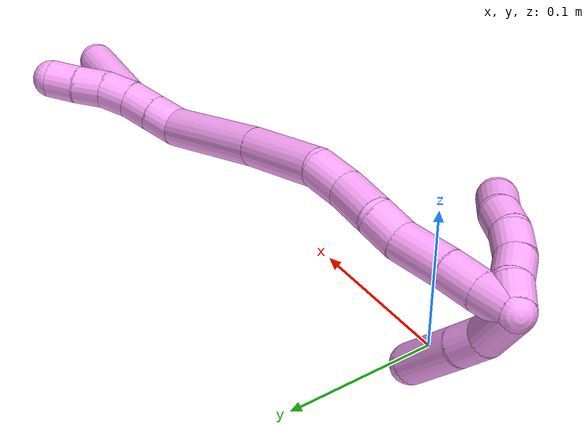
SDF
<sdf version="1.7">
 <world name="default">
  <model name="4">
   <static>0</static>
   <link name="4">
    <collision name="collision-cylinder-e_1_2_8">
     <pose>0.014622 0.004383 -0.038795 -3.02908 0.358356 -2.53871</pose>
     <geometry><cylinder><radius>0.0125</radius><length>0.083381</length></cylinder></geometry>
     <surface>
      <friction><ode><mu>1.16</mu><mu2>1.16</mu2><slip1>0</slip1><slip2>0</slip2></ode></friction>
      <contact><ode><kp>1e+06</kp><kd>1</kd><max_vel>0</max_vel><min_depth>0.001</min_depth></ode></contact>
     </surface>
    </collision>
    <visual name="visual-cylinder-e_1_2_8">
     <pose>0.014622 0.004383 -0.038795 -3.02908 0.358356 -2.53871</pose>
     <geometry><cylinder><radius>0.0125</radius><length>0.083381</length></cylinder></geometry>
     <material><ambient>1 0.65098 0.996078 1</ambient></material>
    </visual>
    <collision name="collision-cylinder-e_2_8_6">
     <pose>0.04405 0.007662 -0.107409 3.10458 0.460576 2.98402</pose>
     <geometry><cylinder><radius>0.0125</radius><length>0.066619</length></cylinder></geometry>
     <surface>
      <friction><ode><mu>1.16</mu><mu2>1.16</mu2><slip1>0</slip1><slip2>0</slip2></ode></friction>
      <contact><ode><kp>1e+06</kp><kd>1</kd><max_vel>0</max_vel><min_depth>0.001</min_depth></ode></contact>
     </surface>
    </collision>
    <visual name="visual-cylinder-e_2_8_6">
     <pose>0.04405 0.007662 -0.107409 3.10458 0.460576 2.98402</pose>
     <geometry><cylinder><radius>0.0125</radius><length>0.066619</length></cylinder></geometry>
     <material><ambient>1 0.65098 0.996078 1</ambient></material>
    </visual>
    <collision name="collision-cylinder-e_1_2_9">
     <pose>0.008101 0.001811 -0.005576 -2.82759 0.944368 -2.54045</pose>
     <geometry><cylinder><radius>0.0125</radius><length>0.02</length></cylinder></geometry>
     <surface>
      <friction><ode><mu>1.16</mu><mu2>1.16</mu2><slip1>0</slip1><slip2>0</slip2></ode></friction>
      <contact><ode><kp>1e+06</kp><kd>1</kd><max_vel>0</max_vel><min_depth>0.001</min_depth></ode></contact>
     </surface>
    </collision>
    <visual name="visual-cylinder-e_1_2_9">
     <pose>0.008101 0.001811 -0.005576 -2.82759 0.944368 -2.54045</pose>
     <geometry><cylinder><radius>0.0125</radius><length>0.02</length></cylinder></geometry>
     <material><ambient>1 0.65098 0.996078 1</ambient></material>
    </visual>
    <collision name="collision-cylinder-e_2_9_10">
     <pose>0.024255 0.005345 -0.016825 -2.84666 0.936143 -2.57002</pose>
     <geometry><cylinder><radius>0.0125</radius><length>0.02</length></cylinder></geometry>
     <surface>
      <friction><ode><mu>1.16</mu><mu2>1.16</mu2><slip1>0</slip1><slip2>0</slip2></ode></friction>
      <contact><ode><kp>1e+06</kp><kd>1</kd><max_vel>0</max_vel><min_depth>0.001</min_depth></ode></contact>
     </surface>
    </collision>
    <visual name="visual-cylinder-e_2_9_10">
     <pose>0.024255 0.005345 -0.016825 -2.84666 0.936143 -2.57002</pose>
     <geometry><cylinder><radius>0.0125</radius><length>0.02</length></cylinder></geometry>
     <material><ambient>1 0.65098 0.996078 1</ambient></material>
    </visual>
    <collision name="collision-cylinder-e_3_10_11">
     <pose>0.040498 0.010361 -0.027197 -2.53045 0.959634 -2.05167</pose>
     <geometry><cylinder><radius>0.0125</radius><length>0.02</length></cylinder></geometry>
     <surface>
      <friction><ode><mu>1.16</mu><mu2>1.16</mu2><slip1>0</slip1><slip2>0</slip2></ode></friction>
      <contact><ode><kp>1e+06</kp><kd>1</kd><max_vel>0</max_vel><min_depth>0.001</min_depth></ode></contact>
     </surface>
    </collision>
    <visual name="visual-cylinder-e_3_10_11">
     <pose>0.040498 0.010361 -0.027197 -2.53045 0.959634 -2.05167</pose>
     <geometry><cylinder><radius>0.0125</radius><length>0.02</length></cylinder></geometry>
     <material><ambient>1 0.65098 0.996078 1</ambient></material>
    </visual>
    <collision name="collision-cylinder-e_4_11_12">
     <pose>0.056357 0.018704 -0.035856 -2.23564 0.874108 -1.52983</pose>
     <geometry><cylinder><radius>0.0125</radius><length>0.02</length></cylinder></geometry>
     <surface>
      <friction><ode><mu>1.16</mu><mu2>1.16</mu2><slip1>0</slip1><slip2>0</slip2></ode></friction>
      <contact><ode><kp>1e+06</kp><kd>1</kd><max_vel>0</max_vel><min_depth>0.001</min_depth></ode></contact>
     </surface>
    </collision>
    <visual name="visual-cylinder-e_4_11_12">
     <pose>0.056357 0.018704 -0.035856 -2.23564 0.874108 -1.52983</pose>
     <geometry><cylinder><radius>0.0125</radius><length>0.02</length></cylinder></geometry>
     <material><ambient>1 0.65098 0.996078 1</ambient></material>
    </visual>
    <collision name="collision-cylinder-e_5_12_5">
     <pose>0.071717 0.028301 -0.044308 -2.35017 0.877196 -1.68641</pose>
     <geometry><cylinder><radius>0.0125</radius><length>0.02</length></cylinder></geometry>
     <surface>
      <friction><ode><mu>1.16</mu><mu2>1.16</mu2><slip1>0</slip1><slip2>0</slip2></ode></friction>
      <contact><ode><kp>1e+06</kp><kd>1</kd><max_vel>0</max_vel><min_depth>0.001</min_depth></ode></contact>
     </surface>
    </collision>
    <visual name="visual-cylinder-e_5_12_5">
     <pose>0.071717 0.028301 -0.044308 -2.35017 0.877196 -1.68641</pose>
     <geometry><cylinder><radius>0.0125</radius><length>0.02</length></cylinder></geometry>
     <material><ambient>1 0.65098 0.996078 1</ambient></material>
    </visual>
    <collision name="collision-cylinder-e_1_2_13">
     <pose>-0.018046 -0.012302 0.033091 0.355926 -0.472528 -0.086555</pose>
     <geometry><cylinder><radius>0.0125</radius><length>0.079297</length></cylinder></geometry>
     <surface>
      <friction><ode><mu>1.16</mu><mu2>1.16</mu2><slip1>0</slip1><slip2>0</slip2></ode></friction>
      <contact><ode><kp>1e+06</kp><kd>1</kd><max_vel>0</max_vel><min_depth>0.001</min_depth></ode></contact>
     </surface>
    </collision>
    <visual name="visual-cylinder-e_1_2_13">
     <pose>-0.018046 -0.012302 0.033091 0.355926 -0.472528 -0.086555</pose>
     <geometry><cylinder><radius>0.0125</radius><length>0.079297</length></cylinder></geometry>
     <material><ambient>1 0.65098 0.996078 1</ambient></material>
    </visual>
    <collision name="collision-cylinder-e_2_13_14">
     <pose>-0.049722 -0.032294 0.090897 0.301671 -0.484738 -0.075117</pose>
     <geometry><cylinder><radius>0.0125</radius><length>0.058507</length></cylinder></geometry>
     <surface>
      <friction><ode><mu>1.16</mu><mu2>1.16</mu2><slip1>0</slip1><slip2>0</slip2></ode></friction>
      <contact><ode><kp>1e+06</kp><kd>1</kd><max_vel>0</max_vel><min_depth>0.001</min_depth></ode></contact>
     </surface>
    </collision>
    <visual name="visual-cylinder-e_2_13_14">
     <pose>-0.049722 -0.032294 0.090897 0.301671 -0.484738 -0.075117</pose>
     <geometry><cylinder><radius>0.0125</radius><length>0.058507</length></cylinder></geometry>
     <material><ambient>1 0.65098 0.996078 1</ambient></material>
    </visual>
    <collision name="collision-cylinder-e_3_14_15">
     <pose>-0.072015 -0.040691 0.125338 0.072482 -0.726222 -0.02755</pose>
     <geometry><cylinder><radius>0.0125</radius><length>0.026086</length></cylinder></geometry>
     <surface>
      <friction><ode><mu>1.16</mu><mu2>1.16</mu2><slip1>0</slip1><slip2>0</slip2></ode></friction>
      <contact><ode><kp>1e+06</kp><kd>1</kd><max_vel>0</max_vel><min_depth>0.001</min_depth></ode></contact>
     </surface>
    </collision>
    <visual name="visual-cylinder-e_3_14_15">
     <pose>-0.072015 -0.040691 0.125338 0.072482 -0.726222 -0.02755</pose>
     <geometry><cylinder><radius>0.0125</radius><length>0.026086</length></cylinder></geometry>
     <material><ambient>1 0.65098 0.996078 1</ambient></material>
    </visual>
    <collision name="collision-cylinder-e_4_15_16">
     <pose>-0.088966 -0.04099 0.148208 -0.030971 -0.562463 0.008948</pose>
     <geometry><cylinder><radius>0.0125</radius><length>0.03109</length></cylinder></geometry>
     <surface>
      <friction><ode><mu>1.16</mu><mu2>1.16</mu2><slip1>0</slip1><slip2>0</slip2></ode></friction>
      <contact><ode><kp>1e+06</kp><kd>1</kd><max_vel>0</max_vel><min_depth>0.001</min_depth></ode></contact>
     </surface>
    </collision>
    <visual name="visual-cylinder-e_4_15_16">
     <pose>-0.088966 -0.04099 0.148208 -0.030971 -0.562463 0.008948</pose>
     <geometry><cylinder><radius>0.0125</radius><length>0.03109</length></cylinder></geometry>
     <material><ambient>1 0.65098 0.996078 1</ambient></material>
    </visual>
    <collision name="collision-cylinder-e_5_16_17">
     <pose>-0.105669 -0.040255 0.16806 -0.048764 -0.897149 0.023474</pose>
     <geometry><cylinder><radius>0.0125</radius><length>0.021531</length></cylinder></geometry>
     <surface>
      <friction><ode><mu>1.16</mu><mu2>1.16</mu2><slip1>0</slip1><slip2>0</slip2></ode></friction>
      <contact><ode><kp>1e+06</kp><kd>1</kd><max_vel>0</max_vel><min_depth>0.001</min_depth></ode></contact>
     </surface>
    </collision>
    <visual name="visual-cylinder-e_5_16_17">
     <pose>-0.105669 -0.040255 0.16806 -0.048764 -0.897149 0.023474</pose>
     <geometry><cylinder><radius>0.0125</radius><length>0.021531</length></cylinder></geometry>
     <material><ambient>1 0.65098 0.996078 1</ambient></material>
    </visual>
    <collision name="collision-cylinder-e_6_17_18">
     <pose>-0.125684 -0.042557 0.188234 0.192807 -0.701855 -0.070773</pose>
     <geometry><cylinder><radius>0.0125</radius><length>0.035935</length></cylinder></geometry>
     <surface>
      <friction><ode><mu>1.16</mu><mu2>1.16</mu2><slip1>0</slip1><slip2>0</slip2></ode></friction>
      <contact><ode><kp>1e+06</kp><kd>1</kd><max_vel>0</max_vel><min_depth>0.001</min_depth></ode></contact>
     </surface>
    </collision>
    <visual name="visual-cylinder-e_6_17_18">
     <pose>-0.125684 -0.042557 0.188234 0.192807 -0.701855 -0.070773</pose>
     <geometry><cylinder><radius>0.0125</radius><length>0.035935</length></cylinder></geometry>
     <material><ambient>1 0.65098 0.996078 1</ambient></material>
    </visual>
    <collision name="collision-cylinder-e_7_18_19">
     <pose>-0.145485 -0.046449 0.210477 0.14291 -0.746451 -0.056041</pose>
     <geometry><cylinder><radius>0.0125</radius><length>0.024155</length></cylinder></geometry>
     <surface>
      <friction><ode><mu>1.16</mu><mu2>1.16</mu2><slip1>0</slip1><slip2>0</slip2></ode></friction>
      <contact><ode><kp>1e+06</kp><kd>1</kd><max_vel>0</max_vel><min_depth>0.001</min_depth></ode></contact>
     </surface>
    </collision>
    <visual name="visual-cylinder-e_7_18_19">
     <pose>-0.145485 -0.046449 0.210477 0.14291 -0.746451 -0.056041</pose>
     <geometry><cylinder><radius>0.0125</radius><length>0.024155</length></cylinder></geometry>
     <material><ambient>1 0.65098 0.996078 1</ambient></material>
    </visual>
    <collision name="collision-cylinder-e_8_19_1">
     <pose>-0.160925 -0.049327 0.228301 0.176705 -0.667126 -0.061371</pose>
     <geometry><cylinder><radius>0.0125</radius><length>0.023399</length></cylinder></geometry>
     <surface>
      <friction><ode><mu>1.16</mu><mu2>1.16</mu2><slip1>0</slip1><slip2>0</slip2></ode></friction>
      <contact><ode><kp>1e+06</kp><kd>1</kd><max_vel>0</max_vel><min_depth>0.001</min_depth></ode></contact>
     </surface>
    </collision>
    <visual name="visual-cylinder-e_8_19_1">
     <pose>-0.160925 -0.049327 0.228301 0.176705 -0.667126 -0.061371</pose>
     <geometry><cylinder><radius>0.0125</radius><length>0.023399</length></cylinder></geometry>
     <material><ambient>1 0.65098 0.996078 1</ambient></material>
    </visual>
    <collision name="collision-cylinder-e_1_1_20">
     <pose>-0.171753 -0.04118 0.224148 -2.50477 -0.215202 0.633346</pose>
     <geometry><cylinder><radius>0.0125</radius><length>0.033613</length></cylinder></geometry>
     <surface>
      <friction><ode><mu>1.16</mu><mu2>1.16</mu2><slip1>0</slip1><slip2>0</slip2></ode></friction>
      <contact><ode><kp>1e+06</kp><kd>1</kd><max_vel>0</max_vel><min_depth>0.001</min_depth></ode></contact>
     </surface>
    </collision>
    <visual name="visual-cylinder-e_1_1_20">
     <pose>-0.171753 -0.04118 0.224148 -2.50477 -0.215202 0.633346</pose>
     <geometry><cylinder><radius>0.0125</radius><length>0.033613</length></cylinder></geometry>
     <material><ambient>1 0.65098 0.996078 1</ambient></material>
    </visual>
    <collision name="collision-cylinder-e_2_20_21">
     <pose>-0.174361 -0.024318 0.203009 -2.412 0.091869 -0.239582</pose>
     <geometry><cylinder><radius>0.0125</radius><length>0.021388</length></cylinder></geometry>
     <surface>
      <friction><ode><mu>1.16</mu><mu2>1.16</mu2><slip1>0</slip1><slip2>0</slip2></ode></friction>
      <contact><ode><kp>1e+06</kp><kd>1</kd><max_vel>0</max_vel><min_depth>0.001</min_depth></ode></contact>
     </surface>
    </collision>
    <visual name="visual-cylinder-e_2_20_21">
     <pose>-0.174361 -0.024318 0.203009 -2.412 0.091869 -0.239582</pose>
     <geometry><cylinder><radius>0.0125</radius><length>0.021388</length></cylinder></geometry>
     <material><ambient>1 0.65098 0.996078 1</ambient></material>
    </visual>
    <collision name="collision-cylinder-e_3_21_4">
     <pose>-0.172509 -0.003989 0.176894 -2.51241 0.038715 -0.118851</pose>
     <geometry><cylinder><radius>0.0125</radius><length>0.044999</length></cylinder></geometry>
     <surface>
      <friction><ode><mu>1.16</mu><mu2>1.16</mu2><slip1>0</slip1><slip2>0</slip2></ode></friction>
      <contact><ode><kp>1e+06</kp><kd>1</kd><max_vel>0</max_vel><min_depth>0.001</min_depth></ode></contact>
     </surface>
    </collision>
    <visual name="visual-cylinder-e_3_21_4">
     <pose>-0.172509 -0.003989 0.176894 -2.51241 0.038715 -0.118851</pose>
     <geometry><cylinder><radius>0.0125</radius><length>0.044999</length></cylinder></geometry>
     <material><ambient>1 0.65098 0.996078 1</ambient></material>
    </visual>
    <collision name="collision-cylinder-e_1_1_22">
     <pose>-0.164945 -0.056503 0.229686 2.51392 0.327795 0.942522</pose>
     <geometry><cylinder><radius>0.0125</radius><length>0.02</length></cylinder></geometry>
     <surface>
      <friction><ode><mu>1.16</mu><mu2>1.16</mu2><slip1>0</slip1><slip2>0</slip2></ode></friction>
      <contact><ode><kp>1e+06</kp><kd>1</kd><max_vel>0</max_vel><min_depth>0.001</min_depth></ode></contact>
     </surface>
    </collision>
    <visual name="visual-cylinder-e_1_1_22">
     <pose>-0.164945 -0.056503 0.229686 2.51392 0.327795 0.942522</pose>
     <geometry><cylinder><radius>0.0125</radius><length>0.02</length></cylinder></geometry>
     <material><ambient>1 0.65098 0.996078 1</ambient></material>
    </visual>
    <collision name="collision-cylinder-e_2_22_23">
     <pose>-0.160787 -0.067993 0.214026 2.50351 0.093942 0.282704</pose>
     <geometry><cylinder><radius>0.0125</radius><length>0.02</length></cylinder></geometry>
     <surface>
      <friction><ode><mu>1.16</mu><mu2>1.16</mu2><slip1>0</slip1><slip2>0</slip2></ode></friction>
      <contact><ode><kp>1e+06</kp><kd>1</kd><max_vel>0</max_vel><min_depth>0.001</min_depth></ode></contact>
     </surface>
    </collision>
    <visual name="visual-cylinder-e_2_22_23">
     <pose>-0.160787 -0.067993 0.214026 2.50351 0.093942 0.282704</pose>
     <geometry><cylinder><radius>0.0125</radius><length>0.02</length></cylinder></geometry>
     <material><ambient>1 0.65098 0.996078 1</ambient></material>
    </visual>
    <collision name="collision-cylinder-e_3_23_24">
     <pose>-0.156602 -0.078621 0.19782 2.62184 0.330676 1.12087</pose>
     <geometry><cylinder><radius>0.0125</radius><length>0.02</length></cylinder></geometry>
     <surface>
      <friction><ode><mu>1.16</mu><mu2>1.16</mu2><slip1>0</slip1><slip2>0</slip2></ode></friction>
      <contact><ode><kp>1e+06</kp><kd>1</kd><max_vel>0</max_vel><min_depth>0.001</min_depth></ode></contact>
     </surface>
    </collision>
    <visual name="visual-cylinder-e_3_23_24">
     <pose>-0.156602 -0.078621 0.19782 2.62184 0.330676 1.12087</pose>
     <geometry><cylinder><radius>0.0125</radius><length>0.02</length></cylinder></geometry>
     <material><ambient>1 0.65098 0.996078 1</ambient></material>
    </visual>
    <collision name="collision-cylinder-e_4_24_25">
     <pose>-0.150361 -0.085738 0.180381 2.88519 0.304106 1.74283</pose>
     <geometry><cylinder><radius>0.0125</radius><length>0.02</length></cylinder></geometry>
     <surface>
      <friction><ode><mu>1.16</mu><mu2>1.16</mu2><slip1>0</slip1><slip2>0</slip2></ode></friction>
      <contact><ode><kp>1e+06</kp><kd>1</kd><max_vel>0</max_vel><min_depth>0.001</min_depth></ode></contact>
     </surface>
    </collision>
    <visual name="visual-cylinder-e_4_24_25">
     <pose>-0.150361 -0.085738 0.180381 2.88519 0.304106 1.74283</pose>
     <geometry><cylinder><radius>0.0125</radius><length>0.02</length></cylinder></geometry>
     <material><ambient>1 0.65098 0.996078 1</ambient></material>
    </visual>
    <collision name="collision-cylinder-e_5_25_3">
     <pose>-0.146862 -0.091565 0.161764 2.7935 0.050473 0.28517</pose>
     <geometry><cylinder><radius>0.0125</radius><length>0.02</length></cylinder></geometry>
     <surface>
      <friction><ode><mu>1.16</mu><mu2>1.16</mu2><slip1>0</slip1><slip2>0</slip2></ode></friction>
      <contact><ode><kp>1e+06</kp><kd>1</kd><max_vel>0</max_vel><min_depth>0.001</min_depth></ode></contact>
     </surface>
    </collision>
    <visual name="visual-cylinder-e_5_25_3">
     <pose>-0.146862 -0.091565 0.161764 2.7935 0.050473 0.28517</pose>
     <geometry><cylinder><radius>0.0125</radius><length>0.02</length></cylinder></geometry>
     <material><ambient>1 0.65098 0.996078 1</ambient></material>
    </visual>
    <collision name="collision-sphere-3">
     <pose>-0.146357 -0.094971 0.152375 0 -0 0</pose>
     <geometry><sphere><radius>0.0125</radius></sphere></geometry>
     <surface>
      <friction><ode><mu>1.16</mu><mu2>1.16</mu2><slip1>0</slip1><slip2>0</slip2></ode></friction>
      <contact><ode><kp>1e+06</kp><kd>1</kd><max_vel>0</max_vel><min_depth>0.001</min_depth></ode></contact>
     </surface>
    </collision>
    <visual name="visual-sphere-3">
     <pose>-0.146357 -0.094971 0.152375 0 -0 0</pose>
     <geometry><sphere><radius>0.0125</radius></sphere></geometry>
     <material><ambient>1 0.65098 0.996078 1</ambient></material>
    </visual>
    <collision name="collision-sphere-25">
     <pose>-0.147367 -0.088158 0.171152 0 -0 0</pose>
     <geometry><sphere><radius>0.0125</radius></sphere></geometry>
     <surface>
      <friction><ode><mu>1.16</mu><mu2>1.16</mu2><slip1>0</slip1><slip2>0</slip2></ode></friction>
      <contact><ode><kp>1e+06</kp><kd>1</kd><max_vel>0</max_vel><min_depth>0.001</min_depth></ode></contact>
     </surface>
    </collision>
    <visual name="visual-sphere-25">
     <pose>-0.147367 -0.088158 0.171152 0 -0 0</pose>
     <geometry><sphere><radius>0.0125</radius></sphere></geometry>
     <material><ambient>1 0.65098 0.996078 1</ambient></material>
    </visual>
    <collision name="collision-sphere-24">
     <pose>-0.153355 -0.083319 0.18961 0 -0 0</pose>
     <geometry><sphere><radius>0.0125</radius></sphere></geometry>
     <surface>
      <friction><ode><mu>1.16</mu><mu2>1.16</mu2><slip1>0</slip1><slip2>0</slip2></ode></friction>
      <contact><ode><kp>1e+06</kp><kd>1</kd><max_vel>0</max_vel><min_depth>0.001</min_depth></ode></contact>
     </surface>
    </collision>
    <visual name="visual-sphere-24">
     <pose>-0.153355 -0.083319 0.18961 0 -0 0</pose>
     <geometry><sphere><radius>0.0125</radius></sphere></geometry>
     <material><ambient>1 0.65098 0.996078 1</ambient></material>
    </visual>
    <collision name="collision-sphere-23">
     <pose>-0.159849 -0.073923 0.206029 0 -0 0</pose>
     <geometry><sphere><radius>0.0125</radius></sphere></geometry>
     <surface>
      <friction><ode><mu>1.16</mu><mu2>1.16</mu2><slip1>0</slip1><slip2>0</slip2></ode></friction>
      <contact><ode><kp>1e+06</kp><kd>1</kd><max_vel>0</max_vel><min_depth>0.001</min_depth></ode></contact>
     </surface>
    </collision>
    <visual name="visual-sphere-23">
     <pose>-0.159849 -0.073923 0.206029 0 -0 0</pose>
     <geometry><sphere><radius>0.0125</radius></sphere></geometry>
     <material><ambient>1 0.65098 0.996078 1</ambient></material>
    </visual>
    <collision name="collision-sphere-22">
     <pose>-0.161725 -0.062063 0.222023 0 -0 0</pose>
     <geometry><sphere><radius>0.0125</radius></sphere></geometry>
     <surface>
      <friction><ode><mu>1.16</mu><mu2>1.16</mu2><slip1>0</slip1><slip2>0</slip2></ode></friction>
      <contact><ode><kp>1e+06</kp><kd>1</kd><max_vel>0</max_vel><min_depth>0.001</min_depth></ode></contact>
     </surface>
    </collision>
    <visual name="visual-sphere-22">
     <pose>-0.161725 -0.062063 0.222023 0 -0 0</pose>
     <geometry><sphere><radius>0.0125</radius></sphere></geometry>
     <material><ambient>1 0.65098 0.996078 1</ambient></material>
    </visual>
    <collision name="collision-sphere-4">
     <pose>-0.171638 0.009241 0.158717 0 -0 0</pose>
     <geometry><sphere><radius>0.0125</radius></sphere></geometry>
     <surface>
      <friction><ode><mu>1.16</mu><mu2>1.16</mu2><slip1>0</slip1><slip2>0</slip2></ode></friction>
      <contact><ode><kp>1e+06</kp><kd>1</kd><max_vel>0</max_vel><min_depth>0.001</min_depth></ode></contact>
     </surface>
    </collision>
    <visual name="visual-sphere-4">
     <pose>-0.171638 0.009241 0.158717 0 -0 0</pose>
     <geometry><sphere><radius>0.0125</radius></sphere></geometry>
     <material><ambient>1 0.65098 0.996078 1</ambient></material>
    </visual>
    <collision name="collision-sphere-21">
     <pose>-0.17338 -0.01722 0.195071 0 -0 0</pose>
     <geometry><sphere><radius>0.0125</radius></sphere></geometry>
     <surface>
      <friction><ode><mu>1.16</mu><mu2>1.16</mu2><slip1>0</slip1><slip2>0</slip2></ode></friction>
      <contact><ode><kp>1e+06</kp><kd>1</kd><max_vel>0</max_vel><min_depth>0.001</min_depth></ode></contact>
     </surface>
    </collision>
    <visual name="visual-sphere-21">
     <pose>-0.17338 -0.01722 0.195071 0 -0 0</pose>
     <geometry><sphere><radius>0.0125</radius></sphere></geometry>
     <material><ambient>1 0.65098 0.996078 1</ambient></material>
    </visual>
    <collision name="collision-sphere-20">
     <pose>-0.175342 -0.031416 0.210947 0 -0 0</pose>
     <geometry><sphere><radius>0.0125</radius></sphere></geometry>
     <surface>
      <friction><ode><mu>1.16</mu><mu2>1.16</mu2><slip1>0</slip1><slip2>0</slip2></ode></friction>
      <contact><ode><kp>1e+06</kp><kd>1</kd><max_vel>0</max_vel><min_depth>0.001</min_depth></ode></contact>
     </surface>
    </collision>
    <visual name="visual-sphere-20">
     <pose>-0.175342 -0.031416 0.210947 0 -0 0</pose>
     <geometry><sphere><radius>0.0125</radius></sphere></geometry>
     <material><ambient>1 0.65098 0.996078 1</ambient></material>
    </visual>
    <collision name="collision-sphere-11">
     <pose>0.048688 0.013653 -0.031897 0 -0 0</pose>
     <geometry><sphere><radius>0.0125</radius></sphere></geometry>
     <surface>
      <friction><ode><mu>1.16</mu><mu2>1.16</mu2><slip1>0</slip1><slip2>0</slip2></ode></friction>
      <contact><ode><kp>1e+06</kp><kd>1</kd><max_vel>0</max_vel><min_depth>0.001</min_depth></ode></contact>
     </surface>
    </collision>
    <visual name="visual-sphere-11">
     <pose>0.048688 0.013653 -0.031897 0 -0 0</pose>
     <geometry><sphere><radius>0.0125</radius></sphere></geometry>
     <material><ambient>1 0.65098 0.996078 1</ambient></material>
    </visual>
    <collision name="collision-sphere-10">
     <pose>0.032308 0.007068 -0.022498 0 -0 0</pose>
     <geometry><sphere><radius>0.0125</radius></sphere></geometry>
     <surface>
      <friction><ode><mu>1.16</mu><mu2>1.16</mu2><slip1>0</slip1><slip2>0</slip2></ode></friction>
      <contact><ode><kp>1e+06</kp><kd>1</kd><max_vel>0</max_vel><min_depth>0.001</min_depth></ode></contact>
     </surface>
    </collision>
    <visual name="visual-sphere-10">
     <pose>0.032308 0.007068 -0.022498 0 -0 0</pose>
     <geometry><sphere><radius>0.0125</radius></sphere></geometry>
     <material><ambient>1 0.65098 0.996078 1</ambient></material>
    </visual>
    <collision name="collision-sphere-6">
     <pose>0.058854 0.006558 -0.137227 0 -0 0</pose>
     <geometry><sphere><radius>0.0125</radius></sphere></geometry>
     <surface>
      <friction><ode><mu>1.16</mu><mu2>1.16</mu2><slip1>0</slip1><slip2>0</slip2></ode></friction>
      <contact><ode><kp>1e+06</kp><kd>1</kd><max_vel>0</max_vel><min_depth>0.001</min_depth></ode></contact>
     </surface>
    </collision>
    <visual name="visual-sphere-6">
     <pose>0.058854 0.006558 -0.137227 0 -0 0</pose>
     <geometry><sphere><radius>0.0125</radius></sphere></geometry>
     <material><ambient>1 0.65098 0.996078 1</ambient></material>
    </visual>
    <collision name="collision-sphere-9">
     <pose>0.016203 0.003621 -0.011152 0 -0 0</pose>
     <geometry><sphere><radius>0.0125</radius></sphere></geometry>
     <surface>
      <friction><ode><mu>1.16</mu><mu2>1.16</mu2><slip1>0</slip1><slip2>0</slip2></ode></friction>
      <contact><ode><kp>1e+06</kp><kd>1</kd><max_vel>0</max_vel><min_depth>0.001</min_depth></ode></contact>
     </surface>
    </collision>
    <visual name="visual-sphere-9">
     <pose>0.016203 0.003621 -0.011152 0 -0 0</pose>
     <geometry><sphere><radius>0.0125</radius></sphere></geometry>
     <material><ambient>1 0.65098 0.996078 1</ambient></material>
    </visual>
    <collision name="collision-sphere-2">
     <geometry><sphere><radius>0.0125</radius></sphere></geometry>
     <surface>
      <friction><ode><mu>1.16</mu><mu2>1.16</mu2><slip1>0</slip1><slip2>0</slip2></ode></friction>
      <contact><ode><kp>1e+06</kp><kd>1</kd><max_vel>0</max_vel><min_depth>0.001</min_depth></ode></contact>
     </surface>
    </collision>
    <visual name="visual-sphere-2">
     <geometry><sphere><radius>0.0125</radius></sphere></geometry>
     <material><ambient>1 0.65098 0.996078 1</ambient></material>
    </visual>
    <collision name="collision-sphere-19">
     <pose>-0.153686 -0.047712 0.219253 0 -0 0</pose>
     <geometry><sphere><radius>0.0125</radius></sphere></geometry>
     <surface>
      <friction><ode><mu>1.16</mu><mu2>1.16</mu2><slip1>0</slip1><slip2>0</slip2></ode></friction>
      <contact><ode><kp>1e+06</kp><kd>1</kd><max_vel>0</max_vel><min_depth>0.001</min_depth></ode></contact>
     </surface>
    </collision>
    <visual name="visual-sphere-19">
     <pose>-0.153686 -0.047712 0.219253 0 -0 0</pose>
     <geometry><sphere><radius>0.0125</radius></sphere></geometry>
     <material><ambient>1 0.65098 0.996078 1</ambient></material>
    </visual>
    <collision name="collision-sphere-8">
     <pose>0.029245 0.008767 -0.077591 0 -0 0</pose>
     <geometry><sphere><radius>0.0125</radius></sphere></geometry>
     <surface>
      <friction><ode><mu>1.16</mu><mu2>1.16</mu2><slip1>0</slip1><slip2>0</slip2></ode></friction>
      <contact><ode><kp>1e+06</kp><kd>1</kd><max_vel>0</max_vel><min_depth>0.001</min_depth></ode></contact>
     </surface>
    </collision>
    <visual name="visual-sphere-8">
     <pose>0.029245 0.008767 -0.077591 0 -0 0</pose>
     <geometry><sphere><radius>0.0125</radius></sphere></geometry>
     <material><ambient>1 0.65098 0.996078 1</ambient></material>
    </visual>
    <collision name="collision-sphere-12">
     <pose>0.064027 0.023754 -0.039814 0 -0 0</pose>
     <geometry><sphere><radius>0.0125</radius></sphere></geometry>
     <surface>
      <friction><ode><mu>1.16</mu><mu2>1.16</mu2><slip1>0</slip1><slip2>0</slip2></ode></friction>
      <contact><ode><kp>1e+06</kp><kd>1</kd><max_vel>0</max_vel><min_depth>0.001</min_depth></ode></contact>
     </surface>
    </collision>
    <visual name="visual-sphere-12">
     <pose>0.064027 0.023754 -0.039814 0 -0 0</pose>
     <geometry><sphere><radius>0.0125</radius></sphere></geometry>
     <material><ambient>1 0.65098 0.996078 1</ambient></material>
    </visual>
    <collision name="collision-sphere-5">
     <pose>0.079406 0.032849 -0.048801 0 -0 0</pose>
     <geometry><sphere><radius>0.0125</radius></sphere></geometry>
     <surface>
      <friction><ode><mu>1.16</mu><mu2>1.16</mu2><slip1>0</slip1><slip2>0</slip2></ode></friction>
      <contact><ode><kp>1e+06</kp><kd>1</kd><max_vel>0</max_vel><min_depth>0.001</min_depth></ode></contact>
     </surface>
    </collision>
    <visual name="visual-sphere-5">
     <pose>0.079406 0.032849 -0.048801 0 -0 0</pose>
     <geometry><sphere><radius>0.0125</radius></sphere></geometry>
     <material><ambient>1 0.65098 0.996078 1</ambient></material>
    </visual>
    <collision name="collision-sphere-13">
     <pose>-0.036091 -0.024604 0.066182 0 -0 0</pose>
     <geometry><sphere><radius>0.0125</radius></sphere></geometry>
     <surface>
      <friction><ode><mu>1.16</mu><mu2>1.16</mu2><slip1>0</slip1><slip2>0</slip2></ode></friction>
      <contact><ode><kp>1e+06</kp><kd>1</kd><max_vel>0</max_vel><min_depth>0.001</min_depth></ode></contact>
     </surface>
    </collision>
    <visual name="visual-sphere-13">
     <pose>-0.036091 -0.024604 0.066182 0 -0 0</pose>
     <geometry><sphere><radius>0.0125</radius></sphere></geometry>
     <material><ambient>1 0.65098 0.996078 1</ambient></material>
    </visual>
    <collision name="collision-sphere-14">
     <pose>-0.063354 -0.039984 0.115611 0 -0 0</pose>
     <geometry><sphere><radius>0.0125</radius></sphere></geometry>
     <surface>
      <friction><ode><mu>1.16</mu><mu2>1.16</mu2><slip1>0</slip1><slip2>0</slip2></ode></friction>
      <contact><ode><kp>1e+06</kp><kd>1</kd><max_vel>0</max_vel><min_depth>0.001</min_depth></ode></contact>
     </surface>
    </collision>
    <visual name="visual-sphere-14">
     <pose>-0.063354 -0.039984 0.115611 0 -0 0</pose>
     <geometry><sphere><radius>0.0125</radius></sphere></geometry>
     <material><ambient>1 0.65098 0.996078 1</ambient></material>
    </visual>
    <collision name="collision-sphere-15">
     <pose>-0.080676 -0.041397 0.135064 0 -0 0</pose>
     <geometry><sphere><radius>0.0125</radius></sphere></geometry>
     <surface>
      <friction><ode><mu>1.16</mu><mu2>1.16</mu2><slip1>0</slip1><slip2>0</slip2></ode></friction>
      <contact><ode><kp>1e+06</kp><kd>1</kd><max_vel>0</max_vel><min_depth>0.001</min_depth></ode></contact>
     </surface>
    </collision>
    <visual name="visual-sphere-15">
     <pose>-0.080676 -0.041397 0.135064 0 -0 0</pose>
     <geometry><sphere><radius>0.0125</radius></sphere></geometry>
     <material><ambient>1 0.65098 0.996078 1</ambient></material>
    </visual>
    <collision name="collision-sphere-16">
     <pose>-0.097256 -0.040583 0.161352 0 -0 0</pose>
     <geometry><sphere><radius>0.0125</radius></sphere></geometry>
     <surface>
      <friction><ode><mu>1.16</mu><mu2>1.16</mu2><slip1>0</slip1><slip2>0</slip2></ode></friction>
      <contact><ode><kp>1e+06</kp><kd>1</kd><max_vel>0</max_vel><min_depth>0.001</min_depth></ode></contact>
     </surface>
    </collision>
    <visual name="visual-sphere-16">
     <pose>-0.097256 -0.040583 0.161352 0 -0 0</pose>
     <geometry><sphere><radius>0.0125</radius></sphere></geometry>
     <material><ambient>1 0.65098 0.996078 1</ambient></material>
    </visual>
    <collision name="collision-sphere-17">
     <pose>-0.114083 -0.039928 0.174768 0 -0 0</pose>
     <geometry><sphere><radius>0.0125</radius></sphere></geometry>
     <surface>
      <friction><ode><mu>1.16</mu><mu2>1.16</mu2><slip1>0</slip1><slip2>0</slip2></ode></friction>
      <contact><ode><kp>1e+06</kp><kd>1</kd><max_vel>0</max_vel><min_depth>0.001</min_depth></ode></contact>
     </surface>
    </collision>
    <visual name="visual-sphere-17">
     <pose>-0.114083 -0.039928 0.174768 0 -0 0</pose>
     <geometry><sphere><radius>0.0125</radius></sphere></geometry>
     <material><ambient>1 0.65098 0.996078 1</ambient></material>
    </visual>
    <collision name="collision-sphere-18">
     <pose>-0.137284 -0.045186 0.201701 0 -0 0</pose>
     <geometry><sphere><radius>0.0125</radius></sphere></geometry>
     <surface>
      <friction><ode><mu>1.16</mu><mu2>1.16</mu2><slip1>0</slip1><slip2>0</slip2></ode></friction>
      <contact><ode><kp>1e+06</kp><kd>1</kd><max_vel>0</max_vel><min_depth>0.001</min_depth></ode></contact>
     </surface>
    </collision>
    <visual name="visual-sphere-18">
     <pose>-0.137284 -0.045186 0.201701 0 -0 0</pose>
     <geometry><sphere><radius>0.0125</radius></sphere></geometry>
     <material><ambient>1 0.65098 0.996078 1</ambient></material>
    </visual>
    <collision name="collision-sphere-1">
     <pose>-0.168164 -0.050943 0.237349 0 -0 0</pose>
     <geometry><sphere><radius>0.0125</radius></sphere></geometry>
     <surface>
      <friction><ode><mu>1.16</mu><mu2>1.16</mu2><slip1>0</slip1><slip2>0</slip2></ode></friction>
      <contact><ode><kp>1e+06</kp><kd>1</kd><max_vel>0</max_vel><min_depth>0.001</min_depth></ode></contact>
     </surface>
    </collision>
    <visual name="visual-sphere-1">
     <pose>-0.168164 -0.050943 0.237349 0 -0 0</pose>
     <geometry><sphere><radius>0.0125</radius></sphere></geometry>
     <material><ambient>1 0.65098 0.996078 1</ambient></material>
    </visual>
    <inertial>
     <pose>-0.063653 -0.023198 0.084204 0 -0 0</pose>
     <mass>0.75</mass>
     <inertia><ixx>-5e-06</ixx><ixy>0</ixy><ixz>0</ixz><iyy>0.000113</iyy><iyz>0</iyz><izz>2e-06</izz></inertia>
    </inertial>
   </link>
   <pose>0.21369 0.041591 0.053101 -0.929526 -0.68934 0.677856</pose>
  </model>
 </world>
</sdf>
